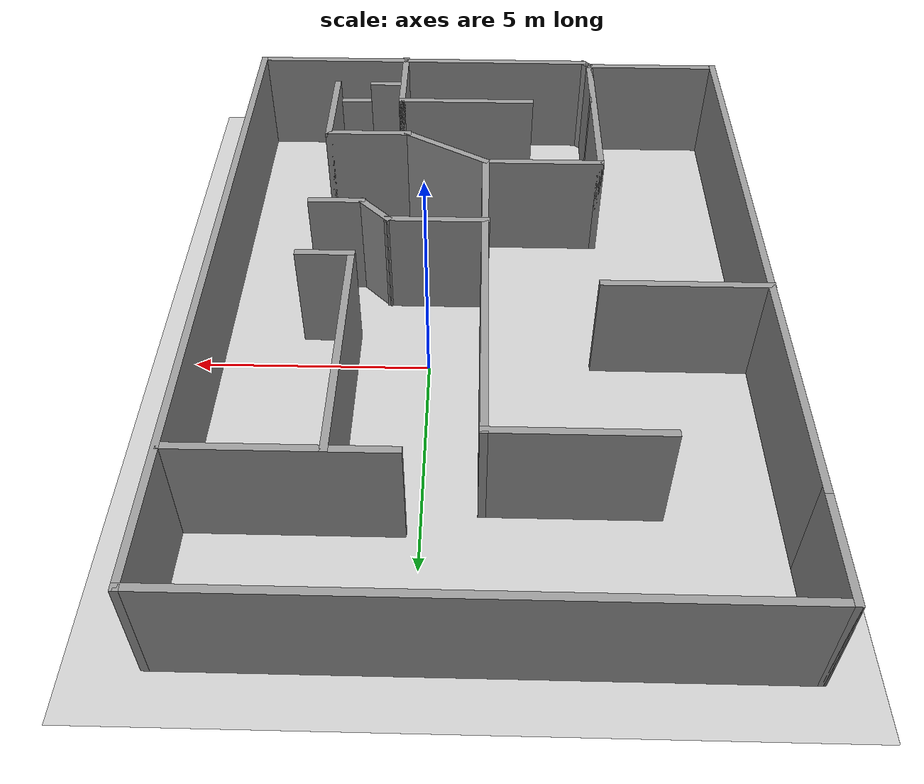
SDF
<sdf version="1.7">
 <world name="default">
  <light name="sun" type="directional">
   <pose>0 0 10 0 -0 0</pose>
   <diffuse>0.8 0.8 0.8 1</diffuse>
   <specular>0.2 0.2 0.2 1</specular>
   <attenuation>
    <range>1000</range>
    <constant>0.9</constant>
    <linear>0.01</linear>
    <quadratic>0.001</quadratic>
   </attenuation>
   <direction>-0.5 0.1 -0.9</direction>
   <spot><inner_angle>0</inner_angle><outer_angle>0</outer_angle><falloff>0</falloff></spot>
  </light>
  <model name="ground_plane">
   <static>1</static>
   <link name="link">
    <collision name="collision">
     <geometry><plane><normal>0 0 1</normal><size>100 100</size></plane></geometry>
     <surface><friction><ode><mu>100</mu><mu2>50</mu2></ode></friction></surface>
    </collision>
    <visual name="visual">
     <cast_shadows>0</cast_shadows>
     <geometry><plane><normal>0 0 1</normal><size>100 100</size></plane></geometry>
     <material>
      <script><uri>file://media/materials/scripts/gazebo.material</uri><name>Gazebo/Grey</name></script>
     </material>
    </visual>
   </link>
  </model>
  <gravity>0 0 -9.8</gravity>
  <magnetic_field>6e-06 2.3e-05 -4.2e-05</magnetic_field>
  <atmosphere type="adiabatic"/>
  <physics type="ode">
   <max_step_size>0.001</max_step_size>
   <real_time_factor>1</real_time_factor>
   <real_time_update_rate>1000</real_time_update_rate>
  </physics>
  <scene><ambient>0.4 0.4 0.4 1</ambient><background>0.7 0.7 0.7 1</background><shadows>1</shadows></scene>
  <audio><device>default</device></audio>
  <spherical_coordinates>
   <surface_model>EARTH_WGS84</surface_model>
   <latitude_deg>0</latitude_deg>
   <longitude_deg>0</longitude_deg>
   <elevation>0</elevation>
   <heading_deg>0</heading_deg>
  </spherical_coordinates>
  <model name="house_model">
   <pose>-1.17987 -0.71818 0 0 -0 0</pose>
   <link name="Door_0">
    <collision name="Door_0_Collision">
     <geometry><box><size>0.9 0.17 2</size></box></geometry>
     <pose>0 0 1 0 -0 0</pose>
    </collision>
    <visual name="Door_0_Visual">
     <pose>0 0 1 0 -0 0</pose>
     <geometry><box><size>0.9 0.17 2</size></box></geometry>
     <material>
      <script><uri>file://media/materials/scripts/gazebo.material</uri><name>Gazebo/Grey</name></script>
     </material>
    </visual>
    <pose>3.31231 -6.58 0 0 -0 0</pose>
   </link>
   <link name="Wall_0">
    <collision name="Wall_0_Collision">
     <geometry><box><size>1.75 0.15 2.5</size></box></geometry>
     <pose>0 0 1.25 0 -0 0</pose>
    </collision>
    <visual name="Wall_0_Visual">
     <pose>0 0 1.25 0 -0 0</pose>
     <geometry><box><size>1.75 0.15 2.5</size></box></geometry>
     <material>
      <script><uri>file://media/materials/scripts/gazebo.material</uri><name>Gazebo/Grey</name></script>
      <ambient>1 1 1 1</ambient>
     </material>
     <meta><layer>0</layer></meta>
    </visual>
    <pose>-2.56946 -6.70537 0 0 -0 -1.5708</pose>
   </link>
   <link name="Wall_1">
    <collision name="Wall_1_Collision">
     <geometry><box><size>4.25 0.15 2.5</size></box></geometry>
     <pose>0 0 1.25 0 -0 0</pose>
    </collision>
    <visual name="Wall_1_Visual">
     <pose>0 0 1.25 0 -0 0</pose>
     <geometry><box><size>4.25 0.15 2.5</size></box></geometry>
     <material>
      <script><uri>file://media/materials/scripts/gazebo.material</uri><name>Gazebo/Grey</name></script>
      <ambient>1 1 1 1</ambient>
     </material>
     <meta><layer>0</layer></meta>
    </visual>
    <pose>-2.56946 -5.45537 0 0 -0 1.5708</pose>
   </link>
   <link name="Wall_10">
    <collision name="Wall_10_Collision">
     <geometry><box><size>3.5 0.15 2.5</size></box></geometry>
     <pose>0 0 1.25 0 -0 0</pose>
    </collision>
    <visual name="Wall_10_Visual">
     <pose>0 0 1.25 0 -0 0</pose>
     <geometry><box><size>3.5 0.15 2.5</size></box></geometry>
     <material>
      <script><uri>file://media/materials/scripts/gazebo.material</uri><name>Gazebo/Grey</name></script>
      <ambient>1 1 1 1</ambient>
     </material>
     <meta><layer>0</layer></meta>
    </visual>
    <pose>-1.64446 4.44463 0 0 -0 3.14159</pose>
   </link>
   <link name="Wall_12">
    <collision name="Wall_12_Collision">
     <geometry><box><size>2.25 0.15 2.5</size></box></geometry>
     <pose>0 0 1.25 0 -0 0</pose>
    </collision>
    <visual name="Wall_12_Visual">
     <pose>0 0 1.25 0 -0 0</pose>
     <geometry><box><size>2.25 0.15 2.5</size></box></geometry>
     <material>
      <script><uri>file://media/materials/scripts/gazebo.material</uri><name>Gazebo/Grey</name></script>
      <ambient>1 1 1 1</ambient>
     </material>
     <meta><layer>0</layer></meta>
    </visual>
    <pose>-5.66946 6.64463 0 0 -0 1.5708</pose>
   </link>
   <link name="Wall_13">
    <collision name="Wall_13_Collision">
     <geometry><box><size>11.5 0.15 2.5</size></box></geometry>
     <pose>0 0 1.25 0 -0 0</pose>
    </collision>
    <visual name="Wall_13_Visual">
     <pose>0 0 1.25 0 -0 0</pose>
     <geometry><box><size>11.5 0.15 2.5</size></box></geometry>
     <material>
      <script><uri>file://media/materials/scripts/gazebo.material</uri><name>Gazebo/Grey</name></script>
      <ambient>1 1 1 1</ambient>
     </material>
     <meta><layer>0</layer></meta>
    </visual>
    <pose>0.005541 7.69463 0 0 -0 0</pose>
   </link>
   <link name="Wall_14">
    <collision name="Wall_14_Collision">
     <geometry><box><size>15.5 0.15 2.5</size></box></geometry>
     <pose>0 0 1.25 0 -0 0</pose>
    </collision>
    <visual name="Wall_14_Visual">
     <pose>0 0 1.25 0 -0 0</pose>
     <geometry><box><size>15.5 0.15 2.5</size></box></geometry>
     <material>
      <script><uri>file://media/materials/scripts/gazebo.material</uri><name>Gazebo/Grey</name></script>
      <ambient>1 1 1 1</ambient>
     </material>
     <meta><layer>0</layer></meta>
    </visual>
    <pose>5.68054 0.019632 0 0 -0 -1.5708</pose>
   </link>
   <link name="Wall_15">
    <collision name="Wall_15_Collision">
     <geometry><box><size>8.25 0.15 2.5</size></box></geometry>
     <pose>0 0 1.25 0 -0 0</pose>
    </collision>
    <visual name="Wall_15_Visual">
     <pose>0 0 1.25 0 -0 0</pose>
     <geometry><box><size>8.25 0.15 2.5</size></box></geometry>
     <material>
      <script><uri>file://media/materials/scripts/gazebo.material</uri><name>Gazebo/Grey</name></script>
      <ambient>1 1 1 1</ambient>
     </material>
     <meta><layer>0</layer></meta>
    </visual>
    <pose>1.63054 -7.65537 0 0 -0 3.14159</pose>
   </link>
   <link name="Wall_16">
    <collision name="Wall_16_Collision">
     <geometry><box><size>0.362132 0.15 2.5</size></box></geometry>
     <pose>0 0 1.25 0 -0 0</pose>
    </collision>
    <visual name="Wall_16_Visual">
     <pose>0 0 1.25 0 -0 0</pose>
     <geometry><box><size>0.362132 0.15 2.5</size></box></geometry>
     <material>
      <script><uri>file://media/materials/scripts/gazebo.material</uri><name>Gazebo/Grey</name></script>
      <ambient>1 1 1 1</ambient>
     </material>
     <meta><layer>0</layer></meta>
    </visual>
    <pose>-2.49446 -7.58037 0 0 -0 2.35619</pose>
   </link>
   <link name="Wall_18">
    <collision name="Wall_18_Collision">
     <geometry><box><size>2.25 0.15 2.5</size></box></geometry>
     <pose>0 0 1.25 0 -0 0</pose>
    </collision>
    <visual name="Wall_18_Visual">
     <pose>0 0 1.25 0 -0 0</pose>
     <geometry><box><size>2.25 0.15 2.5</size></box></geometry>
     <material>
      <script><uri>file://media/materials/scripts/gazebo.material</uri><name>Gazebo/Grey</name></script>
      <ambient>1 1 1 1</ambient>
     </material>
     <meta><layer>0</layer></meta>
    </visual>
    <pose>0.939868 -3.93037 0 0 -0 -0.523599</pose>
   </link>
   <link name="Wall_19">
    <collision name="Wall_19_Collision">
     <geometry><box><size>2 0.15 2.5</size></box></geometry>
     <pose>0 0 1.25 0 -0 0</pose>
    </collision>
    <visual name="Wall_19_Visual">
     <pose>0 0 1.25 0 -0 0</pose>
     <geometry><box><size>2 0.15 2.5</size></box></geometry>
     <material>
      <script><uri>file://media/materials/scripts/gazebo.material</uri><name>Gazebo/Grey</name></script>
      <ambient>1 1 1 1</ambient>
     </material>
     <meta><layer>0</layer></meta>
    </visual>
    <pose>2.7742 -4.45537 0 0 -0 0</pose>
   </link>
   <link name="Wall_2">
    <collision name="Wall_2_Collision">
     <geometry><box><size>0.15 0.15 2.5</size></box></geometry>
     <pose>0 0 1.25 0 -0 0</pose>
    </collision>
    <visual name="Wall_2_Visual">
     <pose>0 0 1.25 0 -0 0</pose>
     <geometry><box><size>0.15 0.15 2.5</size></box></geometry>
     <material>
      <script><uri>file://media/materials/scripts/gazebo.material</uri><name>Gazebo/Grey</name></script>
      <ambient>1 1 1 1</ambient>
     </material>
     <meta><layer>0</layer></meta>
    </visual>
    <pose>-2.56946 -3.40537 0 0 -0 0</pose>
   </link>
   <link name="Wall_20">
    <collision name="Wall_20_Collision">
     <geometry><box><size>2.25 0.15 2.5</size></box></geometry>
     <pose>0 0 1.25 0 -0 0</pose>
    </collision>
    <visual name="Wall_20_Visual">
     <pose>0 0 1.25 0 -0 0</pose>
     <geometry><box><size>2.25 0.15 2.5</size></box></geometry>
     <material>
      <script><uri>file://media/materials/scripts/gazebo.material</uri><name>Gazebo/Grey</name></script>
      <ambient>1 1 1 1</ambient>
     </material>
     <meta><layer>0</layer></meta>
    </visual>
    <pose>3.6992 -5.50537 0 0 -0 -1.5708</pose>
   </link>
   <link name="Wall_22">
    <collision name="Wall_22_Collision">
     <geometry><box><size>3.25 0.15 2.5</size></box></geometry>
     <pose>0 0 1.25 0 -0 0</pose>
    </collision>
    <visual name="Wall_22_Visual">
     <pose>0 0 1.25 0 -0 0</pose>
     <geometry><box><size>3.25 0.15 2.5</size></box></geometry>
     <material>
      <script><uri>file://media/materials/scripts/gazebo.material</uri><name>Gazebo/Grey</name></script>
      <ambient>1 1 1 1</ambient>
     </material>
     <meta><layer>0</layer></meta>
    </visual>
    <pose>0.518276 -5.84463 0 0 -0 0</pose>
   </link>
   <link name="Wall_23">
    <collision name="Wall_23_Collision">
     <geometry><box><size>2 0.15 2.5</size></box></geometry>
     <pose>0 0 1.25 0 -0 0</pose>
    </collision>
    <visual name="Wall_23_Visual">
     <pose>0 0 1.25 0 -0 0</pose>
     <geometry><box><size>2 0.15 2.5</size></box></geometry>
     <material>
      <script><uri>file://media/materials/scripts/gazebo.material</uri><name>Gazebo/Grey</name></script>
      <ambient>1 1 1 1</ambient>
     </material>
     <meta><layer>0</layer></meta>
    </visual>
    <pose>2.06828 -6.76963 0 0 -0 -1.5708</pose>
   </link>
   <link name="Wall_25">
    <collision name="Wall_25_Collision">
     <geometry><box><size>3.5 0.15 2.5</size></box></geometry>
     <pose>0 0 1.25 0 -0 0</pose>
    </collision>
    <visual name="Wall_25_Visual">
     <pose>0 0 1.25 0 -0 0</pose>
     <geometry><box><size>3.5 0.15 2.5</size></box></geometry>
     <material>
      <script><uri>file://media/materials/scripts/gazebo.material</uri><name>Gazebo/Grey</name></script>
      <ambient>1 1 1 1</ambient>
     </material>
     <meta><layer>0</layer></meta>
    </visual>
    <pose>-4.00554 0.608359 0 0 -0 0</pose>
   </link>
   <link name="Wall_27">
    <collision name="Wall_27_Collision">
     <geometry><box><size>4.25 0.15 2.5</size></box></geometry>
     <pose>0 0 1.25 0 -0 0</pose>
    </collision>
    <visual name="Wall_27_Visual">
     <pose>0 0 1.25 0 -0 0</pose>
     <geometry><box><size>4.25 0.15 2.5</size></box></geometry>
     <material>
      <script><uri>file://media/materials/scripts/gazebo.material</uri><name>Gazebo/Grey</name></script>
      <ambient>1 1 1 1</ambient>
     </material>
     <meta><layer>0</layer></meta>
    </visual>
    <pose>3.55124 4.92617 0 0 -0 0</pose>
   </link>
   <link name="Wall_29">
    <collision name="Wall_29_Collision">
     <geometry><box><size>5.25 0.15 2.5</size></box></geometry>
     <pose>0 0 1.25 0 -0 0</pose>
    </collision>
    <visual name="Wall_29_Visual">
     <pose>0 0 1.25 0 -0 0</pose>
     <geometry><box><size>5.25 0.15 2.5</size></box></geometry>
     <material>
      <script><uri>file://media/materials/scripts/gazebo.material</uri><name>Gazebo/Grey</name></script>
      <ambient>1 1 1 1</ambient>
     </material>
     <meta><layer>0</layer></meta>
    </visual>
    <pose>2.77614 2.37122 0 0 -0 -1.5708</pose>
   </link>
   <link name="Wall_3">
    <collision name="Wall_3_Collision">
     <geometry><box><size>2.75 0.15 2.5</size></box></geometry>
     <pose>0 0 1.25 0 -0 0</pose>
    </collision>
    <visual name="Wall_3_Visual">
     <pose>0 0 1.25 0 -0 0</pose>
     <geometry><box><size>2.75 0.15 2.5</size></box></geometry>
     <material>
      <script><uri>file://media/materials/scripts/gazebo.material</uri><name>Gazebo/Grey</name></script>
      <ambient>1 1 1 1</ambient>
     </material>
     <meta><layer>0</layer></meta>
    </visual>
    <pose>-1.26946 -3.40537 0 0 -0 0</pose>
   </link>
   <link name="Wall_30">
    <collision name="Wall_30_Collision">
     <geometry><box><size>1.25 0.15 2.5</size></box></geometry>
     <pose>0 0 1.25 0 -0 0</pose>
    </collision>
    <visual name="Wall_30_Visual">
     <pose>0 0 1.25 0 -0 0</pose>
     <geometry><box><size>1.25 0.15 2.5</size></box></geometry>
     <material>
      <script><uri>file://media/materials/scripts/gazebo.material</uri><name>Gazebo/Grey</name></script>
      <ambient>1 1 1 1</ambient>
     </material>
     <meta><layer>0</layer></meta>
    </visual>
    <pose>3.32614 -0.178784 0 0 -0 0</pose>
   </link>
   <link name="Wall_32">
    <collision name="Wall_32_Collision">
     <geometry><box><size>2.25 0.15 2.5</size></box></geometry>
     <pose>0 0 1.25 0 -0 0</pose>
    </collision>
    <visual name="Wall_32_Visual">
     <pose>0 0 1.25 0 -0 0</pose>
     <geometry><box><size>2.25 0.15 2.5</size></box></geometry>
     <material>
      <script><uri>file://media/materials/scripts/gazebo.material</uri><name>Gazebo/Grey</name></script>
      <ambient>1 1 1 1</ambient>
     </material>
     <meta><layer>0</layer></meta>
    </visual>
    <pose>1.05705 -1.30724 0 0 -0 0</pose>
   </link>
   <link name="Wall_33">
    <collision name="Wall_33_Collision">
     <geometry><box><size>1 0.15 2.5</size></box></geometry>
     <pose>0 0 1.25 0 -0 0</pose>
    </collision>
    <visual name="Wall_33_Visual">
     <pose>0 0 1.25 0 -0 0</pose>
     <geometry><box><size>1 0.15 2.5</size></box></geometry>
     <material>
      <script><uri>file://media/materials/scripts/gazebo.material</uri><name>Gazebo/Grey</name></script>
      <ambient>1 1 1 1</ambient>
     </material>
     <meta><layer>0</layer></meta>
    </visual>
    <pose>2.40757 -1.60776 0 0 -0 -0.785398</pose>
   </link>
   <link name="Wall_34">
    <collision name="Wall_34_Collision">
     <geometry><box><size>1.25 0.15 2.5</size></box></geometry>
     <pose>0 0 1.25 0 -0 0</pose>
    </collision>
    <visual name="Wall_34_Visual">
     <pose>0 0 1.25 0 -0 0</pose>
     <geometry><box><size>1.25 0.15 2.5</size></box></geometry>
     <material>
      <script><uri>file://media/materials/scripts/gazebo.material</uri><name>Gazebo/Grey</name></script>
      <ambient>1 1 1 1</ambient>
     </material>
     <meta><layer>0</layer></meta>
    </visual>
    <pose>3.25809 -1.90828 0 0 -0 0</pose>
   </link>
   <link name="Wall_36">
    <collision name="Wall_36_Collision">
     <geometry><box><size>0.75 0.15 2.5</size></box></geometry>
     <pose>0 0 1.25 0 -0 0</pose>
    </collision>
    <visual name="Wall_36_Visual">
     <pose>0 0 1.25 0 -0 0</pose>
     <geometry><box><size>0.75 0.15 2.5</size></box></geometry>
     <material>
      <script><uri>file://media/materials/scripts/gazebo.material</uri><name>Gazebo/Grey</name></script>
      <ambient>1 1 1 1</ambient>
     </material>
     <meta><layer>0</layer></meta>
    </visual>
    <pose>2.50728 -6.56575 0 0 -0 3.14159</pose>
   </link>
   <link name="Wall_4">
    <collision name="Wall_4_Collision">
     <geometry><box><size>8 0.15 2.5</size></box></geometry>
     <pose>0 0 1.25 0 -0 0</pose>
    </collision>
    <visual name="Wall_4_Visual">
     <pose>0 0 1.25 0 -0 0</pose>
     <geometry><box><size>8 0.15 2.5</size></box></geometry>
     <material>
      <script><uri>file://media/materials/scripts/gazebo.material</uri><name>Gazebo/Grey</name></script>
      <ambient>1 1 1 1</ambient>
     </material>
     <meta><layer>0</layer></meta>
    </visual>
    <pose>0.030542 0.519632 0 0 -0 1.5708</pose>
   </link>
   <link name="Wall_7">
    <collision name="Wall_7_Collision">
     <geometry><box><size>3.25 0.15 2.5</size></box></geometry>
     <pose>0 0 1.25 0 -0 0</pose>
    </collision>
    <visual name="Wall_7_Visual">
     <pose>0 0 1.25 0 -0 0</pose>
     <geometry><box><size>3.25 0.15 2.5</size></box></geometry>
     <material>
      <script><uri>file://media/materials/scripts/gazebo.material</uri><name>Gazebo/Grey</name></script>
      <ambient>1 1 1 1</ambient>
     </material>
     <meta><layer>0</layer></meta>
    </visual>
    <pose>-4.11946 -7.50537 0 0 -0 3.14159</pose>
   </link>
   <link name="Wall_8">
    <collision name="Wall_8_Collision">
     <geometry><box><size>13.25 0.15 2.5</size></box></geometry>
     <pose>0 0 1.25 0 -0 0</pose>
    </collision>
    <visual name="Wall_8_Visual">
     <pose>0 0 1.25 0 -0 0</pose>
     <geometry><box><size>13.25 0.15 2.5</size></box></geometry>
     <material>
      <script><uri>file://media/materials/scripts/gazebo.material</uri><name>Gazebo/Grey</name></script>
      <ambient>1 1 1 1</ambient>
     </material>
     <meta><layer>0</layer></meta>
    </visual>
    <pose>-5.66946 -0.955368 0 0 -0 1.5708</pose>
   </link>
   <static>1</static>
  </model>
 </world>
</sdf>
